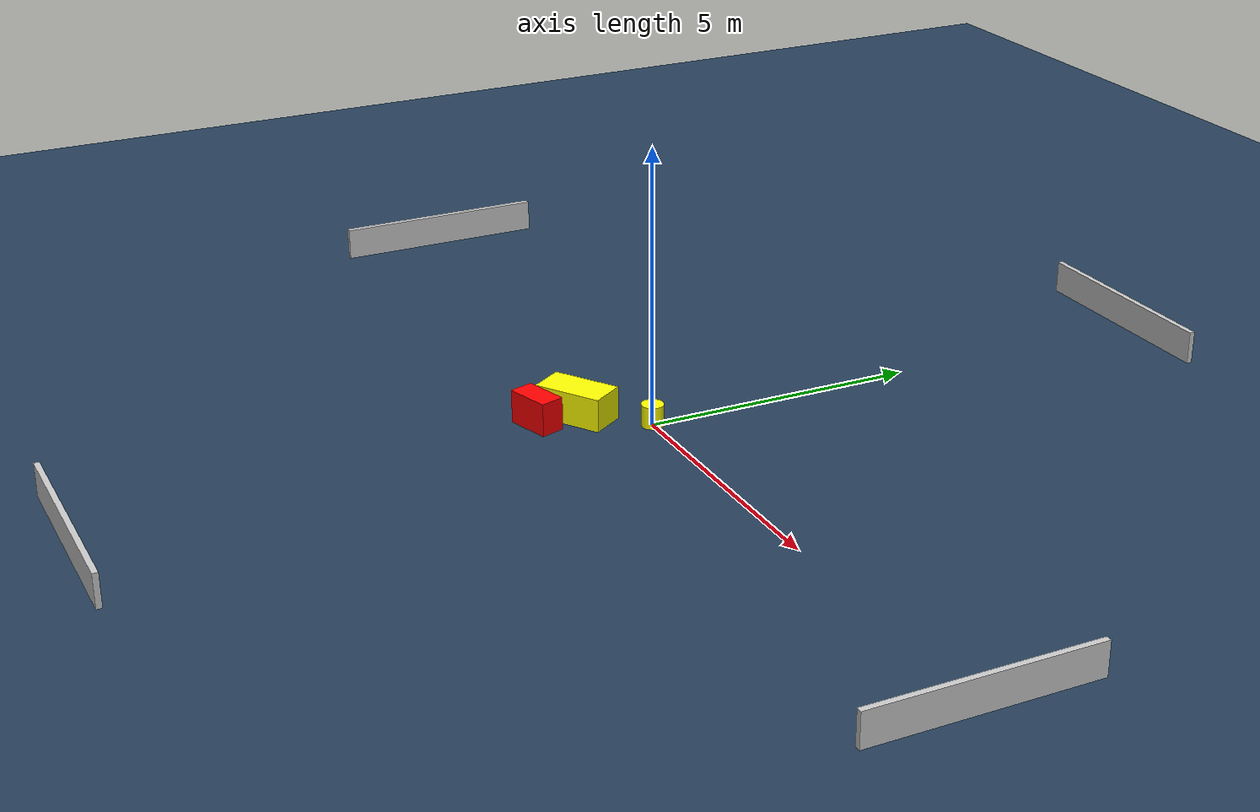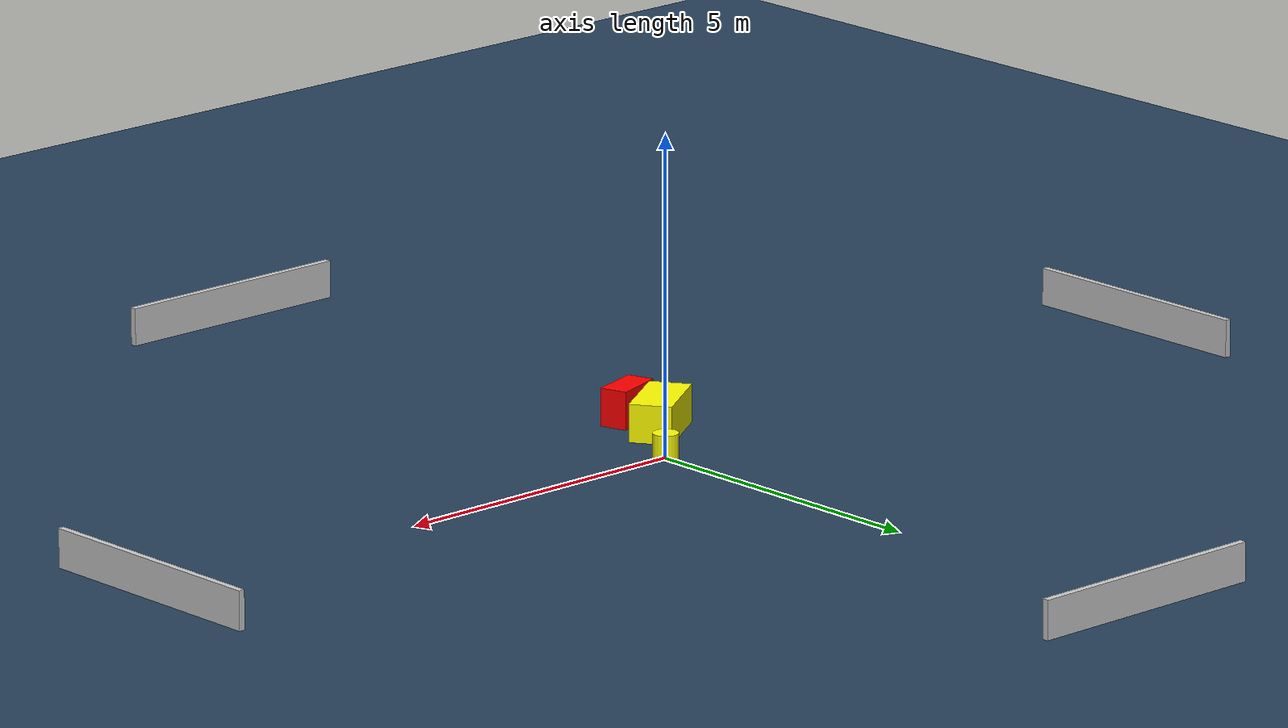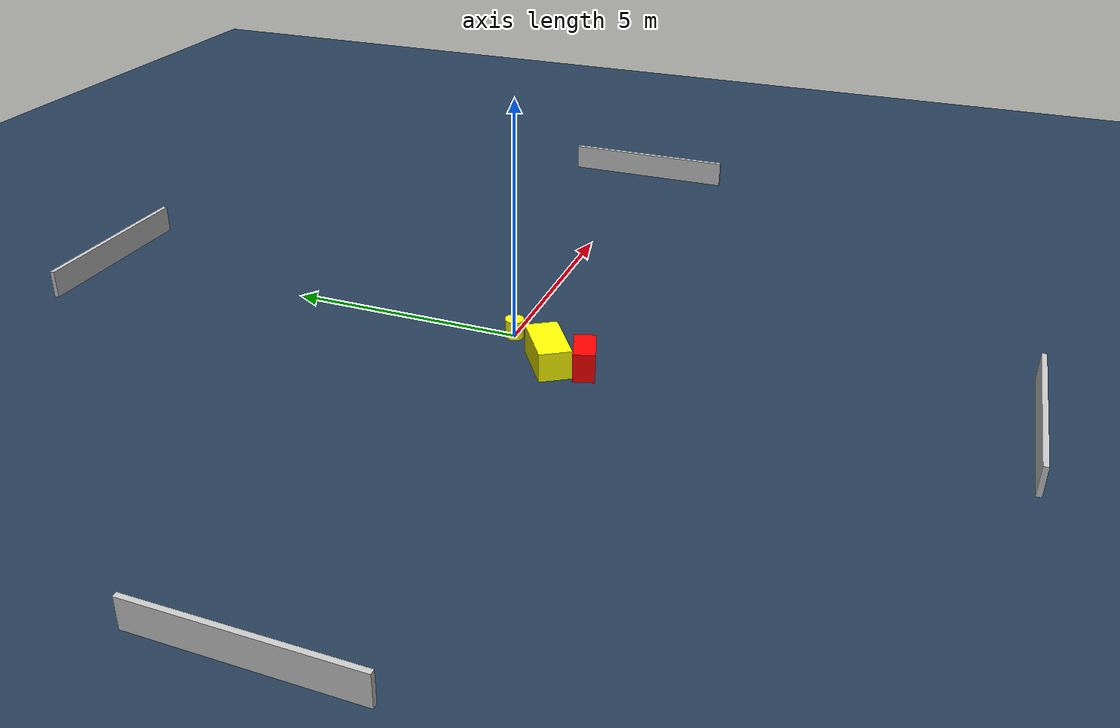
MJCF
<?xml version="1.0" ?>
<mujoco model="generated_environment">
  <option timestep="0.01" integrator="RK4" cone="elliptic"/>
  <default>
    <geom density="1"/>
  </default>
  <asset>
    <texture builtin="gradient" height="3072" name="skybox" rgb1="0.3 0.5 0.7" rgb2="0 0 0" type="skybox" width="512"/>
    <texture builtin="checker" height="300" name="groundplane" rgb1="0.2 0.3 0.4" rgb2="0.1 0.2 0.3" type="2d" width="300"/>
    <material name="groundplane" reflectance="0.2" texrepeat="5 5" texture="groundplane"/>
  </asset>
  <worldbody>
    <light dir="0 0 -1" directional="true" pos="0 0 1.5"/>
    <geom condim="3" friction="0.5 0.005 0.001" material="groundplane" name="floor" pos="0 0 0" size="0 0 0.05" type="plane"/>
    <body name="walls">
      <geom name="wall_1" condim="4" pos="-10.0 0.0 0.3" rgba="0.800000011920929 0.800000011920929 0.800000011920929 1.0" size="0.05 2.0 0.3" type="box"/>
      <geom name="wall_2" condim="4" pos="10.0 0.0 0.3" rgba="0.800000011920929 0.800000011920929 0.800000011920929 1.0" size="0.05 2.0 0.3" type="box"/>
      <geom name="wall_3" condim="4" pos="0.0 -10.0 0.3" rgba="0.800000011920929 0.800000011920929 0.800000011920929 1.0" size="2.0 0.05 0.3" type="box"/>
      <geom name="wall_4" condim="4" pos="0.0 10.0 0.3" rgba="0.800000011920929 0.800000011920929 0.800000011920929 1.0" size="2.0 0.05 0.3" type="box"/>
    </body>
    <body name="robot">
      <joint name="joint_x" type="slide" pos="0 0 0" axis="1 0 0"/>
      <joint name="joint_y" type="slide" pos="0 0 0" axis="0 1 0"/>
      <geom name="robot" type="cylinder" pos="0.0 0.0 0.2" size="0.2 0.2 0.0" mass="5.0" friction="1.0 0.005 0.0001" condim="4" rgba="1.0 1.0 0.0 1.0"/>
    </body>
    <body name="obstacle_1_movable">
      <geom name="obstacle_1_movable" condim="4" pos="-0.8539200594331937 -1.0350986335330572 0.3" euler="0 0 33.151106618073726" friction="0.0 0.005 0.001" rgba="1.0 1.0 0.0 1.0" size="0.6297187999821334 0.3320047307111118 0.3" type="box" mass="0.1"/>
      <joint type="free"/>
    </body>
    <body name="obstacle_2_static">
      <geom name="obstacle_2_static" condim="4" pos="-0.8622266535768212 -1.7865251506138775 0.3" euler="0 0 16.972331724447546" friction="0.0 0.005 0.001" rgba="1.0 0.0 0.0 1.0" size="0.41280760975784647 0.21966079222160642 0.3" type="box"/>
    </body>
  </worldbody>
  <actuator>
    <motor name="actuator_x" joint="joint_x" gear="1" ctrlrange="-1 1"/>
    <motor name="actuator_y" joint="joint_y" gear="1" ctrlrange="-1 1"/>
  </actuator>
</mujoco>
